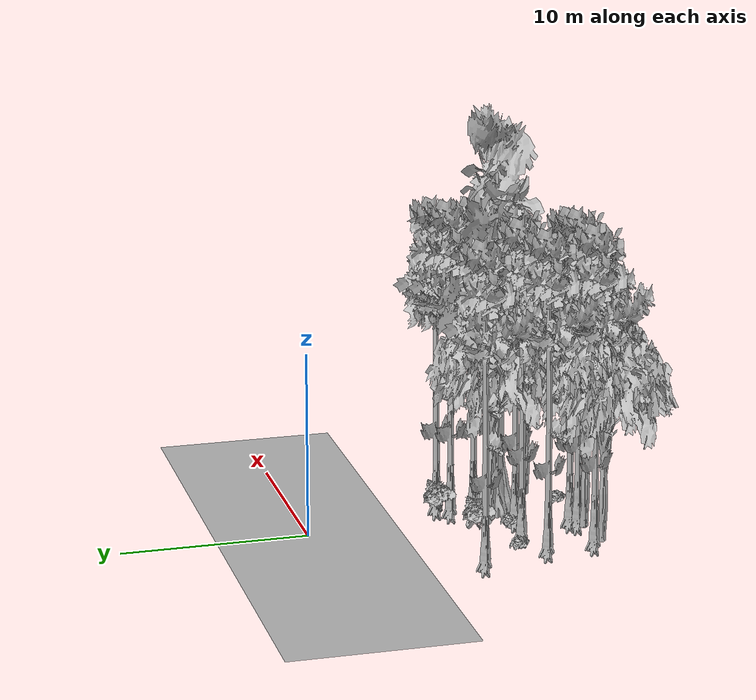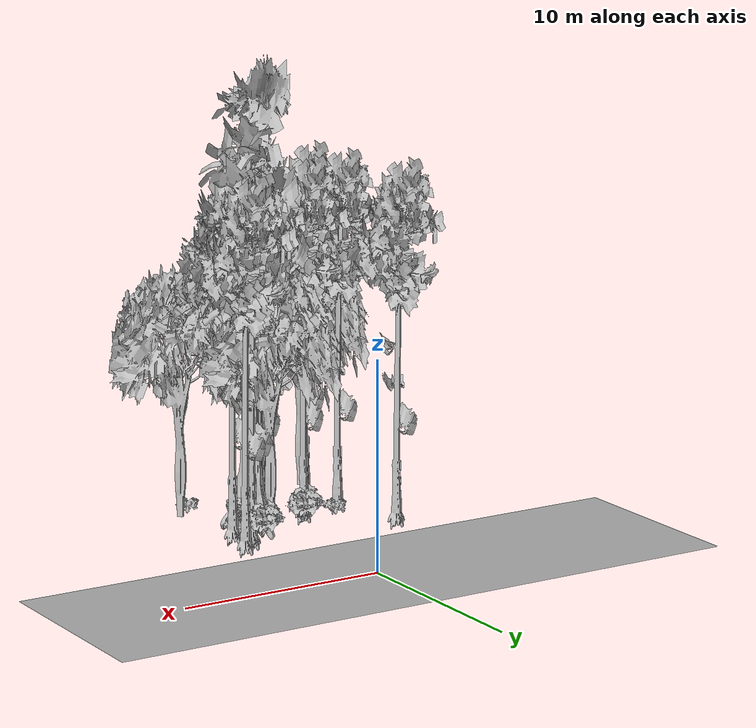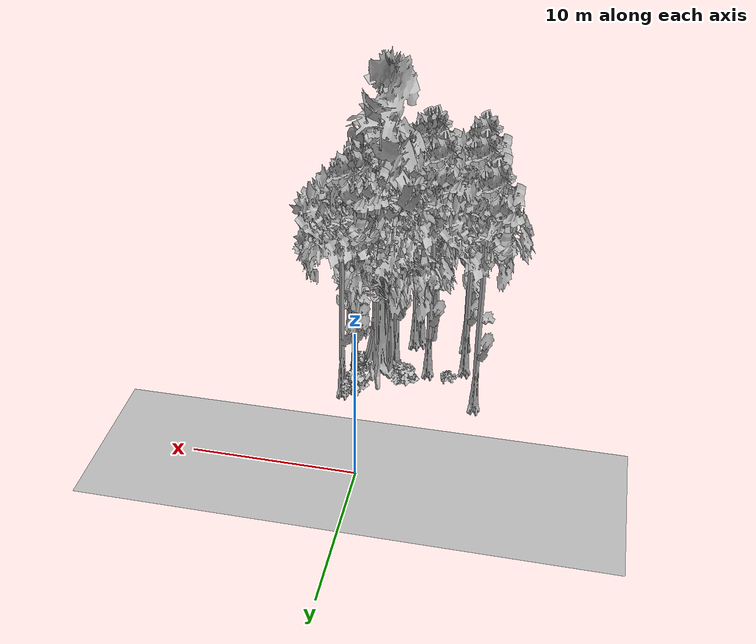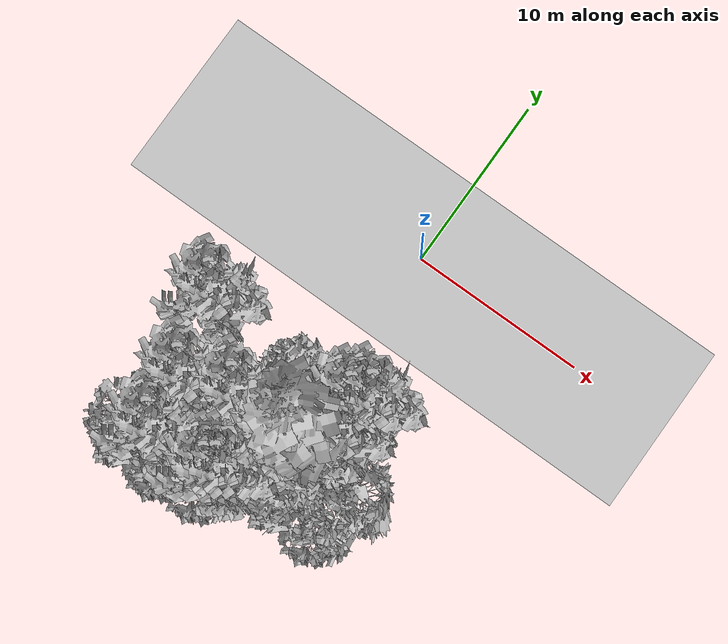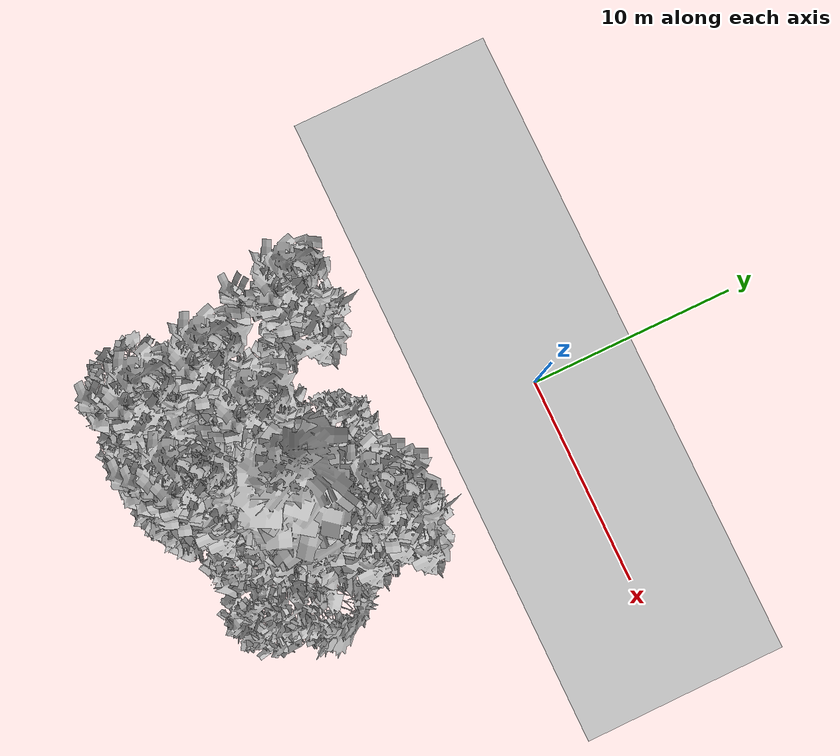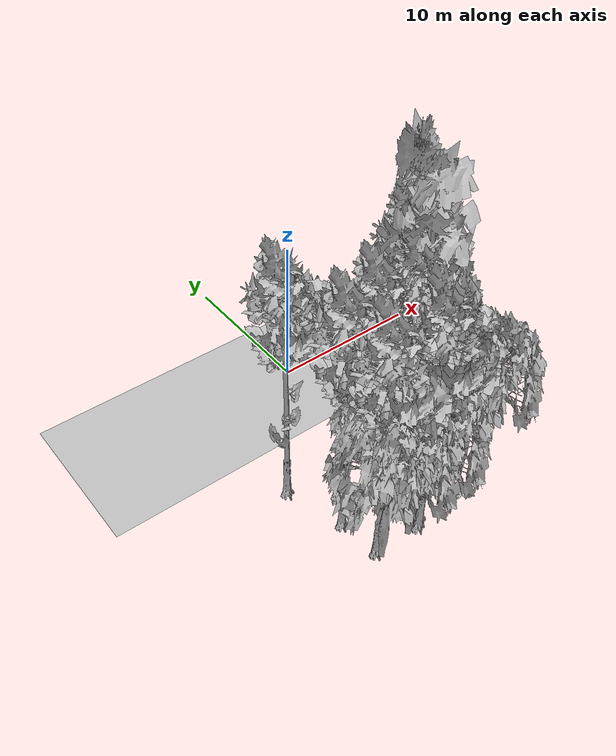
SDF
<sdf version="1.7">
 <world name="default">
  <model name="ground_plane">
   <static>1</static>
   <link name="link">
    <collision name="collision">
     <geometry><plane><normal>0 0 1</normal><size>100 100</size></plane></geometry>
     <surface><contact><ode><min_depth>0.01</min_depth><max_vel>0</max_vel></ode></contact></surface>
    </collision>
    <visual name="grass">
     <cast_shadows>0</cast_shadows>
     <geometry>
      <mesh>
       <scale>0.5814285714285714 0.18142857142857144 0.1</scale>
       <uri>file://grass_plane/meshes/grass_plane.dae</uri>
      </mesh>
     </geometry>
    </visual>
   </link>
  </model>
  <model name="Tree 56">
   <static>1</static>
   <pose>-1.5665254225176284 -14.352320970904364 0 1.57079 -0 0</pose>
   <link name="link">
    <collision name="collision">
     <geometry><mesh><scale>3.5 5 3.5</scale><uri>model://tree_9/meshes/tree_9.obj</uri></mesh></geometry>
    </collision>
    <visual name="visual">
     <geometry><mesh><scale>3.5 5 3.5</scale><uri>model://tree_9/meshes/tree_9.obj</uri></mesh></geometry>
    </visual>
   </link>
  </model>
  <model name="Tree 79">
   <static>1</static>
   <pose>-4.931363179732266 -11.620528589442456 0 1.57079 -0 0</pose>
   <link name="link">
    <collision name="collision">
     <geometry><mesh><scale>3.5 5 3.5</scale><uri>model://tree_9/meshes/tree_9.obj</uri></mesh></geometry>
    </collision>
    <visual name="visual">
     <geometry><mesh><scale>3.5 5 3.5</scale><uri>model://tree_9/meshes/tree_9.obj</uri></mesh></geometry>
    </visual>
   </link>
  </model>
  <model name="Tree 86">
   <static>1</static>
   <pose>-4.729874107609078 -14.698200529360816 0 1.57079 -0 0</pose>
   <link name="link">
    <collision name="collision">
     <geometry><mesh><scale>3.5 5 3.5</scale><uri>model://tree_2/meshes/tree_2.obj</uri></mesh></geometry>
    </collision>
    <visual name="visual">
     <geometry><mesh><scale>3.5 5 3.5</scale><uri>model://tree_2/meshes/tree_2.obj</uri></mesh></geometry>
    </visual>
   </link>
  </model>
  <model name="Tree 135">
   <static>1</static>
   <pose>-0.3441289474727469 -11.251529491573796 0 1.57079 -0 0</pose>
   <link name="link">
    <collision name="collision">
     <geometry><mesh><scale>3.5 5 3.5</scale><uri>model://tree_9/meshes/tree_9.obj</uri></mesh></geometry>
    </collision>
    <visual name="visual">
     <geometry><mesh><scale>3.5 5 3.5</scale><uri>model://tree_9/meshes/tree_9.obj</uri></mesh></geometry>
    </visual>
   </link>
  </model>
  <model name="Tree 208">
   <static>1</static>
   <pose>2.1004168321929484 -9.655761640388278 0 1.57079 -0 0</pose>
   <link name="link">
    <collision name="collision">
     <geometry><mesh><scale>3.5 5 3.5</scale><uri>model://tree_9/meshes/tree_9.obj</uri></mesh></geometry>
    </collision>
    <visual name="visual">
     <geometry><mesh><scale>3.5 5 3.5</scale><uri>model://tree_9/meshes/tree_9.obj</uri></mesh></geometry>
    </visual>
   </link>
  </model>
  <model name="Tree 215">
   <static>1</static>
   <pose>-1.1494491826667925 -14.041273383285692 0 1.57079 -0 0</pose>
   <link name="link">
    <collision name="collision">
     <geometry><mesh><scale>3.5 5 3.5</scale><uri>model://tree_9/meshes/tree_9.obj</uri></mesh></geometry>
    </collision>
    <visual name="visual">
     <geometry><mesh><scale>3.5 5 3.5</scale><uri>model://tree_9/meshes/tree_9.obj</uri></mesh></geometry>
    </visual>
   </link>
  </model>
  <model name="Tree 230">
   <static>1</static>
   <pose>-6.0128856986978505 -7.901125668529162 0 1.57079 -0 0</pose>
   <link name="link">
    <collision name="collision">
     <geometry><mesh><scale>3.5 5 3.5</scale><uri>model://tree_9/meshes/tree_9.obj</uri></mesh></geometry>
    </collision>
    <visual name="visual">
     <geometry><mesh><scale>3.5 5 3.5</scale><uri>model://tree_9/meshes/tree_9.obj</uri></mesh></geometry>
    </visual>
   </link>
  </model>
  <model name="Tree 251">
   <static>1</static>
   <pose>-2.534845731154519 -14.454296440766381 0 1.57079 -0 0</pose>
   <link name="link">
    <collision name="collision">
     <geometry><mesh><scale>3.5 5 3.5</scale><uri>model://tree_2/meshes/tree_2.obj</uri></mesh></geometry>
    </collision>
    <visual name="visual">
     <geometry><mesh><scale>3.5 5 3.5</scale><uri>model://tree_2/meshes/tree_2.obj</uri></mesh></geometry>
    </visual>
   </link>
  </model>
  <model name="Tree 264">
   <static>1</static>
   <pose>-2.5759716805594692 -10.926319027184768 0 1.57079 -0 0</pose>
   <link name="link">
    <collision name="collision">
     <geometry><mesh><scale>3.5 5 3.5</scale><uri>model://tree_9/meshes/tree_9.obj</uri></mesh></geometry>
    </collision>
    <visual name="visual">
     <geometry><mesh><scale>3.5 5 3.5</scale><uri>model://tree_9/meshes/tree_9.obj</uri></mesh></geometry>
    </visual>
   </link>
  </model>
  <model name="Tree 295">
   <static>1</static>
   <pose>0.6177354995245921 -10.39341839621781 0 1.57079 -0 0</pose>
   <link name="link">
    <collision name="collision">
     <geometry><mesh><scale>3.5 5 3.5</scale><uri>model://tree_4/meshes/tree_4.obj</uri></mesh></geometry>
    </collision>
    <visual name="visual">
     <geometry><mesh><scale>3.5 5 3.5</scale><uri>model://tree_4/meshes/tree_4.obj</uri></mesh></geometry>
    </visual>
   </link>
  </model>
  <model name="Tree 302">
   <static>1</static>
   <pose>1.831307857002379 -8.300232878005065 0 1.57079 -0 0</pose>
   <link name="link">
    <collision name="collision">
     <geometry><mesh><scale>3.5 5 3.5</scale><uri>model://tree_9/meshes/tree_9.obj</uri></mesh></geometry>
    </collision>
    <visual name="visual">
     <geometry><mesh><scale>3.5 5 3.5</scale><uri>model://tree_9/meshes/tree_9.obj</uri></mesh></geometry>
    </visual>
   </link>
  </model>
  <model name="Tree 332">
   <static>1</static>
   <pose>-4.643934168135409 -14.254977559709715 0 1.57079 -0 0</pose>
   <link name="link">
    <collision name="collision">
     <geometry><mesh><scale>3.5 5 3.5</scale><uri>model://tree_9/meshes/tree_9.obj</uri></mesh></geometry>
    </collision>
    <visual name="visual">
     <geometry><mesh><scale>3.5 5 3.5</scale><uri>model://tree_9/meshes/tree_9.obj</uri></mesh></geometry>
    </visual>
   </link>
  </model>
  <model name="Tree 407">
   <static>1</static>
   <pose>-0.2372990089441629 -9.983671882001204 0 1.57079 -0 0</pose>
   <link name="link">
    <collision name="collision">
     <geometry><mesh><scale>3.5 5 3.5</scale><uri>model://tree_2/meshes/tree_2.obj</uri></mesh></geometry>
    </collision>
    <visual name="visual">
     <geometry><mesh><scale>3.5 5 3.5</scale><uri>model://tree_2/meshes/tree_2.obj</uri></mesh></geometry>
    </visual>
   </link>
  </model>
  <model name="Tree 434">
   <static>1</static>
   <pose>2.518280410389906 -7.70189901160252 0 1.57079 -0 0</pose>
   <link name="link">
    <collision name="collision">
     <geometry><mesh><scale>3.5 5 3.5</scale><uri>model://tree_9/meshes/tree_9.obj</uri></mesh></geometry>
    </collision>
    <visual name="visual">
     <geometry><mesh><scale>3.5 5 3.5</scale><uri>model://tree_9/meshes/tree_9.obj</uri></mesh></geometry>
    </visual>
   </link>
  </model>
  <model name="Tree 437">
   <static>1</static>
   <pose>3.0797519993249125 -12.91576874901235 0 1.57079 -0 0</pose>
   <link name="link">
    <collision name="collision">
     <geometry><mesh><scale>3.5 5 3.5</scale><uri>model://tree_2/meshes/tree_2.obj</uri></mesh></geometry>
    </collision>
    <visual name="visual">
     <geometry><mesh><scale>3.5 5 3.5</scale><uri>model://tree_2/meshes/tree_2.obj</uri></mesh></geometry>
    </visual>
   </link>
  </model>
  <model name="Bush 4">
   <static>1</static>
   <pose>-0.6113496438112023 -10.954832649788727 0 1.57079 -0 0</pose>
   <link name="link">
    <collision name="collision">
     <geometry><mesh><scale>2 2 2</scale><uri>model://bush_2/meshes/bush_2.obj</uri></mesh></geometry>
     <surface><contact><collide_without_contact>false</collide_without_contact></contact></surface>
    </collision>
    <visual name="visual">
     <geometry><mesh><scale>2 2 2</scale><uri>model://bush_2/meshes/bush_2.obj</uri></mesh></geometry>
    </visual>
   </link>
  </model>
  <model name="Bush 138">
   <static>1</static>
   <pose>-1.3792901597388436 -9.001423072232232 0 1.57079 -0 0</pose>
   <link name="link">
    <collision name="collision">
     <geometry><mesh><scale>2 2 2</scale><uri>model://bush_1/meshes/bush_1.obj</uri></mesh></geometry>
     <surface><contact><collide_without_contact>false</collide_without_contact></contact></surface>
    </collision>
    <visual name="visual">
     <geometry><mesh><scale>2 2 2</scale><uri>model://bush_1/meshes/bush_1.obj</uri></mesh></geometry>
    </visual>
   </link>
  </model>
  <model name="Bush 141">
   <static>1</static>
   <pose>1.6283819725736777 -7.684557351567278 0 1.57079 -0 0</pose>
   <link name="link">
    <collision name="collision">
     <geometry><mesh><scale>2 2 2</scale><uri>model://bush_1/meshes/bush_1.obj</uri></mesh></geometry>
     <surface><contact><collide_without_contact>false</collide_without_contact></contact></surface>
    </collision>
    <visual name="visual">
     <geometry><mesh><scale>2 2 2</scale><uri>model://bush_1/meshes/bush_1.obj</uri></mesh></geometry>
    </visual>
   </link>
  </model>
  <model name="Bush 149">
   <static>1</static>
   <pose>1.9694162749270916 -14.376090209517715 0 1.57079 -0 0</pose>
   <link name="link">
    <collision name="collision">
     <geometry><mesh><scale>2 2 2</scale><uri>model://bush_2/meshes/bush_2.obj</uri></mesh></geometry>
     <surface><contact><collide_without_contact>false</collide_without_contact></contact></surface>
    </collision>
    <visual name="visual">
     <geometry><mesh><scale>2 2 2</scale><uri>model://bush_2/meshes/bush_2.obj</uri></mesh></geometry>
    </visual>
   </link>
  </model>
  <model name="Bush 191">
   <static>1</static>
   <pose>-4.064383992745171 -10.399493067972006 0 1.57079 -0 0</pose>
   <link name="link">
    <collision name="collision">
     <geometry><mesh><scale>2 2 2</scale><uri>model://bush_2/meshes/bush_2.obj</uri></mesh></geometry>
     <surface><contact><collide_without_contact>false</collide_without_contact></contact></surface>
    </collision>
    <visual name="visual">
     <geometry><mesh><scale>2 2 2</scale><uri>model://bush_2/meshes/bush_2.obj</uri></mesh></geometry>
    </visual>
   </link>
  </model>
  <model name="Bush 202">
   <static>1</static>
   <pose>1.8031203028341025 -10.037525233830525 0 1.57079 -0 0</pose>
   <link name="link">
    <collision name="collision">
     <geometry><mesh><scale>2 2 2</scale><uri>model://bush_2/meshes/bush_2.obj</uri></mesh></geometry>
     <surface><contact><collide_without_contact>false</collide_without_contact></contact></surface>
    </collision>
    <visual name="visual">
     <geometry><mesh><scale>2 2 2</scale><uri>model://bush_2/meshes/bush_2.obj</uri></mesh></geometry>
    </visual>
   </link>
  </model>
  <model name="Bush 284">
   <static>1</static>
   <pose>1.6747414808580245 -10.038897472872346 0 1.57079 -0 0</pose>
   <link name="link">
    <collision name="collision">
     <geometry><mesh><scale>2 2 2</scale><uri>model://bush_4/meshes/bush_4.obj</uri></mesh></geometry>
     <surface><contact><collide_without_contact>false</collide_without_contact></contact></surface>
    </collision>
    <visual name="visual">
     <geometry><mesh><scale>2 2 2</scale><uri>model://bush_4/meshes/bush_4.obj</uri></mesh></geometry>
    </visual>
   </link>
  </model>
 </world>
</sdf>
